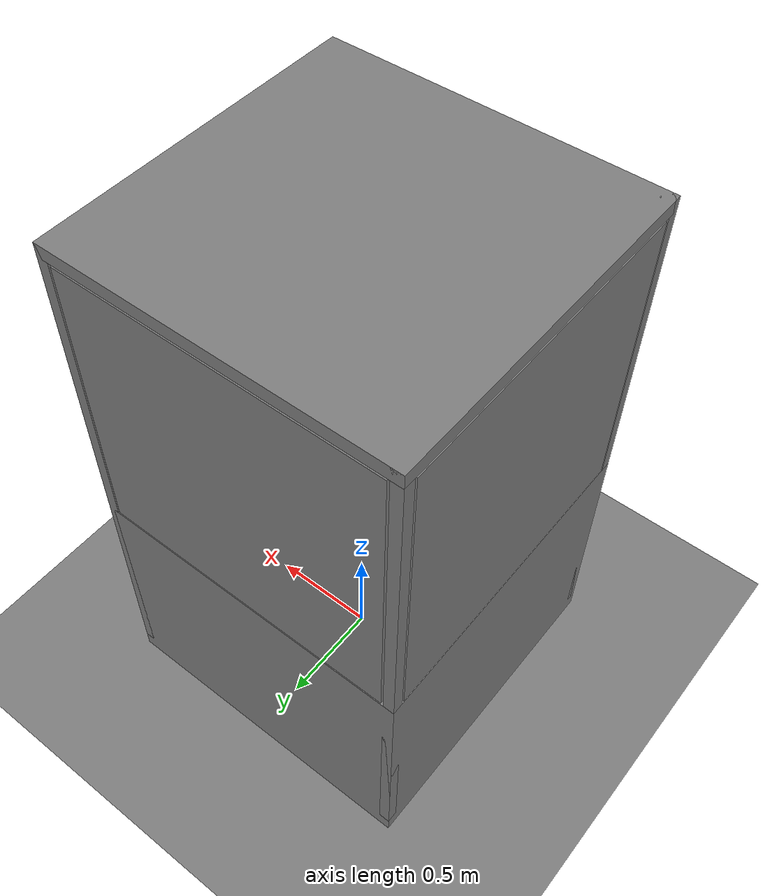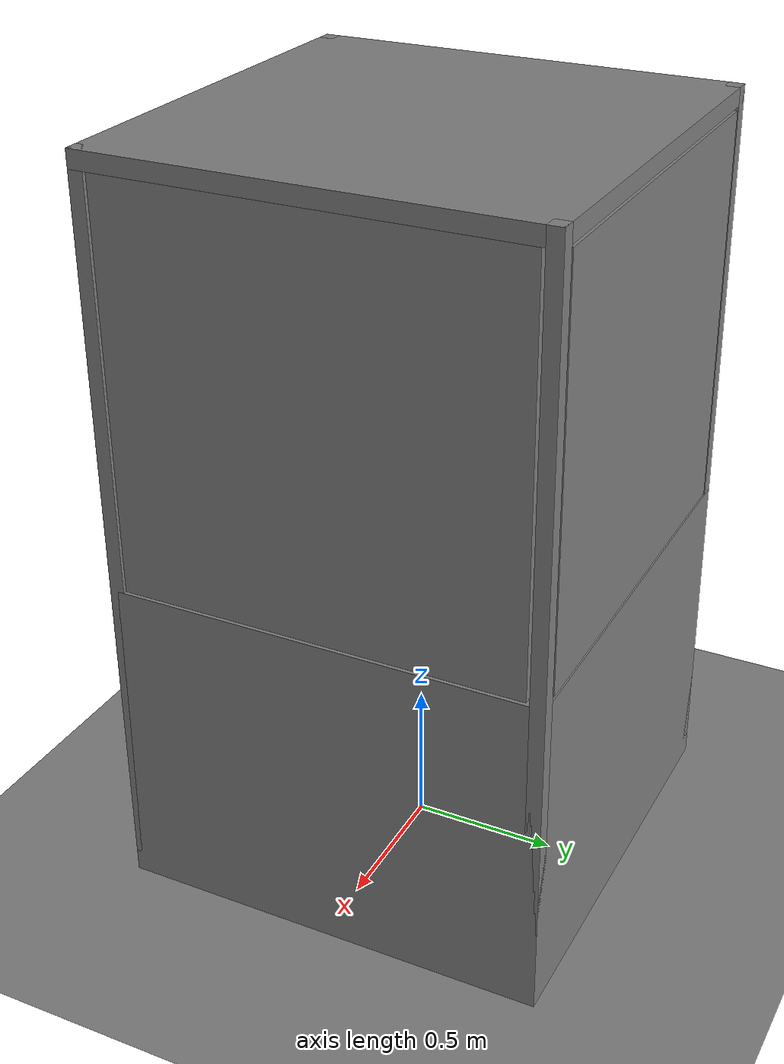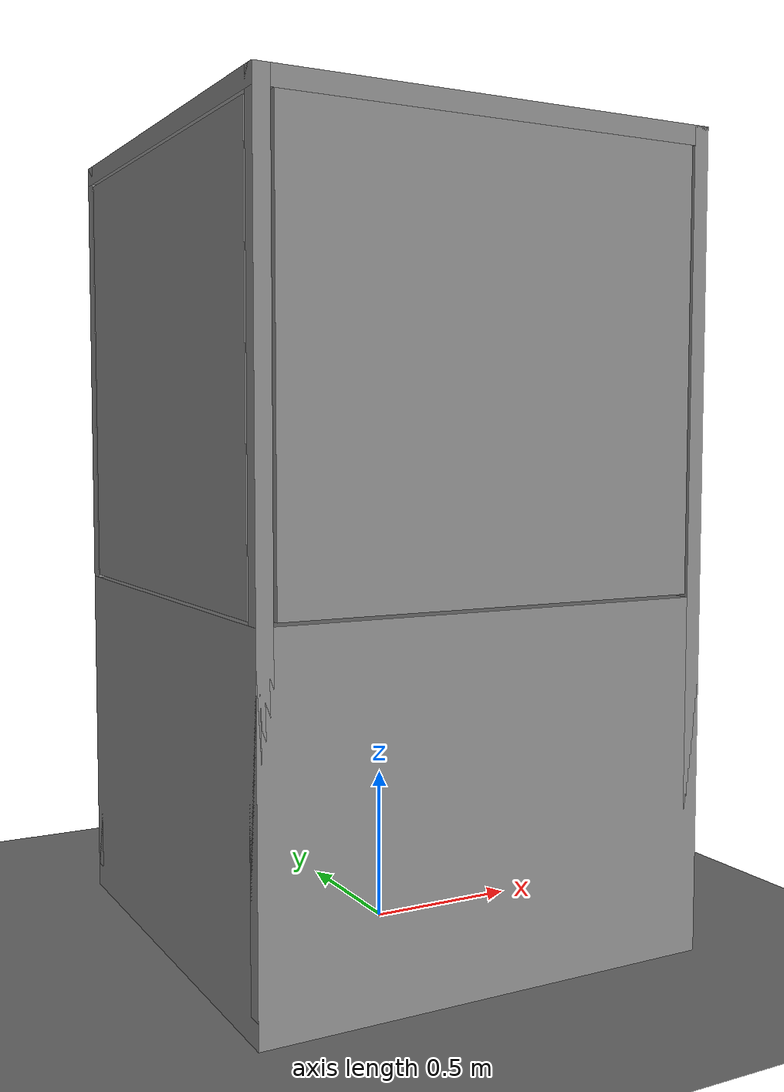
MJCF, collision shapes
<mujoco model="aic_world">
  <compiler angle="radian" />

  <option gravity="0 0 -9.8" magnetic="5.5645e-06 2.28758e-05 -4.23884e-05" />

  <visual>
    <headlight ambient="0 0 0" diffuse="0 0 0" specular="0 0 0" />
  </visual>

  <default>
    <default class="world_default" />
    <default class="cable_default">
      <joint damping="0.2" />
    </default>
    <default class="sc_port_default">
      <geom friction="0.5 0.5" />
    </default>
    <default class="nic_card_default">
      <geom friction="0.1 0.005 0.1" />
    </default>
  </default>

  <asset>
    <texture type="2d" colorspace="linear" name="texture_004c99bdba6ed245cd977ad2f24fce7b24967b1013515a98fda1c10cb547bb0b_floor_visual_Plane" file="004c99bdba6ed245cd977ad2f24fce7b24967b1013515a98fda1c10cb547bb0b_floor_visual_b3a94635-54d6beff6424435d3828cb4c8a1278d9ea3964b0.png" />
    <texture type="2d" colorspace="linear" name="texture_20c3c21d33ad91c02acd28d29c6619e4def43e4ad97f9963f1f40c69556a8667_nic_card_visual_merged_0" file="20c3c21d33ad91c02acd28d29c6619e4def43e4ad97f9963f1f40c69556a8667_nic_card_visual_45ced356-decb3c11fd49e8be2155fa2b1c64d354b4b1809a.png" />
    <texture type="2d" colorspace="linear" name="texture_20c3c21d33ad91c02acd28d29c6619e4def43e4ad97f9963f1f40c69556a8667_nic_card_visual_merged_1" file="20c3c21d33ad91c02acd28d29c6619e4def43e4ad97f9963f1f40c69556a8667_nic_card_visual_39dce63a-b1ab28e3f7e42255c5bb13a337e50008ebdbcb02.png" />
    <texture type="2d" colorspace="linear" name="texture_70f18413e443c6ac8bc02b557eb6c2925e90c411d72d13ae42f85ac7d3aa0981_sc_plug_visual_merged_0" file="70f18413e443c6ac8bc02b557eb6c2925e90c411d72d13ae42f85ac7d3aa0981_sc_plug_visual_5875f865-48f62b2f4840d852c7f39a01e6c183037dc1485b.png" />
    <texture type="2d" colorspace="linear" name="texture_6d489da5295e168562f19bbb4c2b9fbdac898c9ba5e02eb997d4ee70d7291580_lc_plug_visual_merged_0" file="6d489da5295e168562f19bbb4c2b9fbdac898c9ba5e02eb997d4ee70d7291580_lc_plug_visual_03dabf32-0905e8a8aa368516e682f6ec84258100cdb4efef.png" />
    <texture type="2d" colorspace="linear" name="texture_2564bbe0f5722ff8251bd203ef80c312faa7946fac1e29b125ba85a355c0acc4_sfp_module_visual_Body.005" file="2564bbe0f5722ff8251bd203ef80c312faa7946fac1e29b125ba85a355c0acc4_sfp_module_visual_8fc63b58-7471eafc55dcb668ae68adfe70a147b363ba3be9.png" />
    <texture type="2d" colorspace="linear" name="texture_2564bbe0f5722ff8251bd203ef80c312faa7946fac1e29b125ba85a355c0acc4_sfp_module_visual_Body.005_1" file="2564bbe0f5722ff8251bd203ef80c312faa7946fac1e29b125ba85a355c0acc4_sfp_module_visual_1f09e86a-a4dc4a72bd6e778067310898a5c179607fd78966.png" />
    <material name="material_2d9391f98201003f225acde4d09d36aa89e5d4dc4e11c4b1d33184f277d08bb1_enclosure_visual_V1014952.001" class="world_default" shininess="30" rgba="0.290196 0.290196 0.290196 1" />
    <material name="material_2d9391f98201003f225acde4d09d36aa89e5d4dc4e11c4b1d33184f277d08bb1_enclosure_visual_V1014952.001_1" class="world_default" shininess="30" rgba="0.129412 0.129412 0.133333 1" />
    <material name="material_2d9391f98201003f225acde4d09d36aa89e5d4dc4e11c4b1d33184f277d08bb1_light_visual_Plane.001" class="world_default" shininess="30" rgba="0.5 0.5 0.5 1" />
    <material name="material_004c99bdba6ed245cd977ad2f24fce7b24967b1013515a98fda1c10cb547bb0b_floor_visual_Plane" class="world_default" texture="texture_004c99bdba6ed245cd977ad2f24fce7b24967b1013515a98fda1c10cb547bb0b_floor_visual_Plane" shininess="30" rgba="0.5 0.5 0.5 1" />
    <material name="material_004c99bdba6ed245cd977ad2f24fce7b24967b1013515a98fda1c10cb547bb0b_walls_visual_Curve.001" class="world_default" shininess="30" rgba="0.0196078 0.0196078 0.0196078 1" />
    <material name="material_004c99bdba6ed245cd977ad2f24fce7b24967b1013515a98fda1c10cb547bb0b_walls_visual_merged_1" class="world_default" shininess="30" rgba="0.262745 0.262745 0.262745 1" />
    <material name="material_004c99bdba6ed245cd977ad2f24fce7b24967b1013515a98fda1c10cb547bb0b_walls_visual_Plane.003_1" class="world_default" shininess="30" rgba="0.8 0.8 0.8 1" />
    <material name="material_004c99bdba6ed245cd977ad2f24fce7b24967b1013515a98fda1c10cb547bb0b_walls_visual_Plane.002" class="world_default" shininess="30" rgba="0.207843 0.207843 0.207843 1" />
    <material name="material_fe59c208e1c9f790f73d46922512168041cc2a8447a159d98596e558a7dea8a9_base_visual_ISO_4762_-_M3_x_8.019" class="world_default" shininess="30" rgba="0.0352941 0.0352941 0.0313726 1" />
    <material name="material_fe59c208e1c9f790f73d46922512168041cc2a8447a159d98596e558a7dea8a9_base_visual_ISO_4762_-_M3_x_8.019_1" class="world_default" shininess="30" rgba="0.0313726 0.0313726 0.0313726 1" />
    <material name="material_fe59c208e1c9f790f73d46922512168041cc2a8447a159d98596e558a7dea8a9_base_visual_ISO_4762_-_M3_x_8.019_2" class="world_default" shininess="30" rgba="0.215686 0 0.215686 1" />
    <material name="material_20c3c21d33ad91c02acd28d29c6619e4def43e4ad97f9963f1f40c69556a8667_nic_card_mount_visual_ISO_4762_-_M2_x_8.054" class="world_default" shininess="30" rgba="0.0352941 0.0352941 0.0313726 1" />
    <material name="material_20c3c21d33ad91c02acd28d29c6619e4def43e4ad97f9963f1f40c69556a8667_nic_card_mount_visual_ISO_4762_-_M2_x_8.054_1" class="world_default" shininess="30" rgba="0.0313726 0.0313726 0.0313726 1" />
    <material name="material_20c3c21d33ad91c02acd28d29c6619e4def43e4ad97f9963f1f40c69556a8667_nic_card_visual_merged_0" class="world_default" texture="texture_20c3c21d33ad91c02acd28d29c6619e4def43e4ad97f9963f1f40c69556a8667_nic_card_visual_merged_0" shininess="30" rgba="0.5 0.5 0.5 1" />
    <material name="material_20c3c21d33ad91c02acd28d29c6619e4def43e4ad97f9963f1f40c69556a8667_nic_card_visual_merged_1" class="world_default" texture="texture_20c3c21d33ad91c02acd28d29c6619e4def43e4ad97f9963f1f40c69556a8667_nic_card_visual_merged_1" shininess="30" rgba="0.5 0.5 0.5 1" />
    <material name="material_20c3c21d33ad91c02acd28d29c6619e4def43e4ad97f9963f1f40c69556a8667_nic_card_visual_Plane.029" class="world_default" shininess="30" rgba="0.0235294 0.0392157 0.0117647 1" />
    <material name="material_20c3c21d33ad91c02acd28d29c6619e4def43e4ad97f9963f1f40c69556a8667_nic_card_visual_Cube.007" class="world_default" shininess="30" rgba="0 0 0 1" />
    <material name="material_70f18413e443c6ac8bc02b557eb6c2925e90c411d72d13ae42f85ac7d3aa0981_sc_plug_visual_merged_0" class="world_default" texture="texture_70f18413e443c6ac8bc02b557eb6c2925e90c411d72d13ae42f85ac7d3aa0981_sc_plug_visual_merged_0" shininess="30" rgba="0.5 0.5 0.5 1" />
    <material name="material_6d489da5295e168562f19bbb4c2b9fbdac898c9ba5e02eb997d4ee70d7291580_lc_plug_visual_merged_0" class="world_default" texture="texture_6d489da5295e168562f19bbb4c2b9fbdac898c9ba5e02eb997d4ee70d7291580_lc_plug_visual_merged_0" shininess="30" rgba="0.5 0.5 0.5 1" />
    <material name="material_2564bbe0f5722ff8251bd203ef80c312faa7946fac1e29b125ba85a355c0acc4_sfp_module_visual_Body.005" class="world_default" texture="texture_2564bbe0f5722ff8251bd203ef80c312faa7946fac1e29b125ba85a355c0acc4_sfp_module_visual_Body.005" shininess="30" rgba="0.5 0.5 0.5 1" />
    <material name="material_2564bbe0f5722ff8251bd203ef80c312faa7946fac1e29b125ba85a355c0acc4_sfp_module_visual_Body.005_1" class="world_default" texture="texture_2564bbe0f5722ff8251bd203ef80c312faa7946fac1e29b125ba85a355c0acc4_sfp_module_visual_Body.005_1" shininess="30" rgba="0.5 0.5 0.5 1" />
    <mesh name="2d9391f98201003f225acde4d09d36aa89e5d4dc4e11c4b1d33184f277d08bb1_enclosure_visual_V1014952.001" class="world_default" content_type="model/obj" file="2d9391f98201003f225acde4d09d36aa89e5d4dc4e11c4b1d33184f277d08bb1_enclosure_visual_V1014952.001-c990efe7b9dfe87aa065fd6eb3960ce051ae2aef.obj" inertia="shell" />
    <mesh name="2d9391f98201003f225acde4d09d36aa89e5d4dc4e11c4b1d33184f277d08bb1_enclosure_visual_V1014952.001_1" class="world_default" content_type="model/obj" file="2d9391f98201003f225acde4d09d36aa89e5d4dc4e11c4b1d33184f277d08bb1_enclosure_visual_V1014952.001_1-807e07de06af157c84b994a232617507a7059420.obj" inertia="shell" />
    <mesh name="2d9391f98201003f225acde4d09d36aa89e5d4dc4e11c4b1d33184f277d08bb1_light_visual_Plane.001" class="world_default" content_type="model/obj" file="2d9391f98201003f225acde4d09d36aa89e5d4dc4e11c4b1d33184f277d08bb1_light_visual_Plane.001-a8a774a80bc239d73769a498eae528b206eebcb0.obj" inertia="shell" />
    <mesh name="004c99bdba6ed245cd977ad2f24fce7b24967b1013515a98fda1c10cb547bb0b_floor_visual_Plane" class="world_default" content_type="model/obj" file="004c99bdba6ed245cd977ad2f24fce7b24967b1013515a98fda1c10cb547bb0b_floor_visual_Plane-4dc7f6150ad7c239769a0860a01efb2015657aea.obj" inertia="shell" />
    <mesh name="004c99bdba6ed245cd977ad2f24fce7b24967b1013515a98fda1c10cb547bb0b_walls_visual_Curve.001" class="world_default" content_type="model/obj" file="004c99bdba6ed245cd977ad2f24fce7b24967b1013515a98fda1c10cb547bb0b_walls_visual_Curve.001-4d7c79ac2e958832fdb15589262141ca1b80d3a5.obj" inertia="shell" />
    <mesh name="004c99bdba6ed245cd977ad2f24fce7b24967b1013515a98fda1c10cb547bb0b_walls_visual_merged_1" class="world_default" content_type="model/obj" file="004c99bdba6ed245cd977ad2f24fce7b24967b1013515a98fda1c10cb547bb0b_walls_visual_merged_1-359a22140d528747936e80bedf90e1437a177a9f.obj" inertia="shell" />
    <mesh name="004c99bdba6ed245cd977ad2f24fce7b24967b1013515a98fda1c10cb547bb0b_walls_visual_Plane.003_1" class="world_default" content_type="model/obj" file="004c99bdba6ed245cd977ad2f24fce7b24967b1013515a98fda1c10cb547bb0b_walls_visual_Plane.003_1-cd05ed21fa19a2784fb772d7519abf7c31c8b85f.obj" inertia="shell" />
    <mesh name="004c99bdba6ed245cd977ad2f24fce7b24967b1013515a98fda1c10cb547bb0b_walls_visual_Plane.002" class="world_default" content_type="model/obj" file="004c99bdba6ed245cd977ad2f24fce7b24967b1013515a98fda1c10cb547bb0b_walls_visual_Plane.002-ee4f781765eec46c2256d941981732d4b1857f24.obj" inertia="shell" />
    <mesh name="fe59c208e1c9f790f73d46922512168041cc2a8447a159d98596e558a7dea8a9_base_visual_ISO_4762_-_M3_x_8.019" class="world_default" content_type="model/obj" file="fe59c208e1c9f790f73d46922512168041cc2a8447a159d98596e558a7dea8a9_base_visual_ISO_4762_-_M3_x_8.019-f814bb518c42769543ab6246809f3fe4af5c2b64.obj" inertia="shell" />
    <mesh name="fe59c208e1c9f790f73d46922512168041cc2a8447a159d98596e558a7dea8a9_base_visual_ISO_4762_-_M3_x_8.019_1" class="world_default" content_type="model/obj" file="fe59c208e1c9f790f73d46922512168041cc2a8447a159d98596e558a7dea8a9_base_visual_ISO_4762_-_M3_x_8.019_1-0b276ba9910a7642121235b62d2afc47c3995782.obj" inertia="shell" />
    <mesh name="fe59c208e1c9f790f73d46922512168041cc2a8447a159d98596e558a7dea8a9_base_visual_ISO_4762_-_M3_x_8.019_2" class="world_default" content_type="model/obj" file="fe59c208e1c9f790f73d46922512168041cc2a8447a159d98596e558a7dea8a9_base_visual_ISO_4762_-_M3_x_8.019_2-7b96569be9572803417c5650ee83c9c883b44191.obj" inertia="shell" />
    <mesh name="20c3c21d33ad91c02acd28d29c6619e4def43e4ad97f9963f1f40c69556a8667_nic_card_mount_visual_ISO_4762_-_M2_x_8.054" class="world_default" content_type="model/obj" file="20c3c21d33ad91c02acd28d29c6619e4def43e4ad97f9963f1f40c69556a8667_nic_card_mount_visual_ISO_4762_-_M2_x_8.054-865f98896565b646973302f5cc3bb20e1474682a.obj" inertia="shell" />
    <mesh name="20c3c21d33ad91c02acd28d29c6619e4def43e4ad97f9963f1f40c69556a8667_nic_card_mount_visual_ISO_4762_-_M2_x_8.054_1" class="world_default" content_type="model/obj" file="20c3c21d33ad91c02acd28d29c6619e4def43e4ad97f9963f1f40c69556a8667_nic_card_mount_visual_ISO_4762_-_M2_x_8.054_1-5adcf23490bd5794ededbd17ac1064f40ca2f1d8.obj" inertia="shell" />
    <mesh name="20c3c21d33ad91c02acd28d29c6619e4def43e4ad97f9963f1f40c69556a8667_nic_card_visual_merged_0" class="world_default" content_type="model/obj" file="20c3c21d33ad91c02acd28d29c6619e4def43e4ad97f9963f1f40c69556a8667_nic_card_visual_merged_0-b45f6200bfaa68e87732b114c99af8b477e66413.obj" inertia="shell" />
    <mesh name="20c3c21d33ad91c02acd28d29c6619e4def43e4ad97f9963f1f40c69556a8667_nic_card_visual_merged_1" class="world_default" content_type="model/obj" file="20c3c21d33ad91c02acd28d29c6619e4def43e4ad97f9963f1f40c69556a8667_nic_card_visual_merged_1-0e349b7b61b9f4e172feb5320f1e8146f966f938.obj" inertia="shell" />
    <mesh name="20c3c21d33ad91c02acd28d29c6619e4def43e4ad97f9963f1f40c69556a8667_nic_card_visual_Plane.029" class="world_default" content_type="model/obj" file="20c3c21d33ad91c02acd28d29c6619e4def43e4ad97f9963f1f40c69556a8667_nic_card_visual_Plane.029-3e628f059a97b4e803370a2b5e0abfcfac063972.obj" inertia="shell" />
    <mesh name="20c3c21d33ad91c02acd28d29c6619e4def43e4ad97f9963f1f40c69556a8667_nic_card_visual_Cube.007" class="world_default" content_type="model/obj" file="20c3c21d33ad91c02acd28d29c6619e4def43e4ad97f9963f1f40c69556a8667_nic_card_visual_Cube.007-f8fbe4a2582482ceb99cb3e87bdf6d5a3daf05ec.obj" inertia="shell" />
    <mesh name="70f18413e443c6ac8bc02b557eb6c2925e90c411d72d13ae42f85ac7d3aa0981_sc_plug_visual_merged_0" class="world_default" content_type="model/obj" file="70f18413e443c6ac8bc02b557eb6c2925e90c411d72d13ae42f85ac7d3aa0981_sc_plug_visual_merged_0-67f94accf247f722dd4954d7448d7956402901f2.obj" inertia="shell" />
    <mesh name="6d489da5295e168562f19bbb4c2b9fbdac898c9ba5e02eb997d4ee70d7291580_lc_plug_visual_merged_0" class="world_default" content_type="model/obj" file="6d489da5295e168562f19bbb4c2b9fbdac898c9ba5e02eb997d4ee70d7291580_lc_plug_visual_merged_0-fdaf59710fc3cc118a7df05add4ff4205edda4ef.obj" inertia="shell" />
    <mesh name="2564bbe0f5722ff8251bd203ef80c312faa7946fac1e29b125ba85a355c0acc4_sfp_module_visual_Body.005" class="world_default" content_type="model/obj" file="2564bbe0f5722ff8251bd203ef80c312faa7946fac1e29b125ba85a355c0acc4_sfp_module_visual_Body.005-f93147e1e403de321fb70c06a4b1e00f20feb9fd.obj" inertia="shell" />
    <mesh name="2564bbe0f5722ff8251bd203ef80c312faa7946fac1e29b125ba85a355c0acc4_sfp_module_visual_Body.005_1" class="world_default" content_type="model/obj" file="2564bbe0f5722ff8251bd203ef80c312faa7946fac1e29b125ba85a355c0acc4_sfp_module_visual_Body.005_1-4af964a95522e2593eb6381eca4f09ef239782c7.obj" inertia="shell" />
  </asset>

  <worldbody>
    <body name="enclosure_link">
      <inertial pos="0 0 0" mass="1" diaginertia="1 1 1" />
      <geom name="v1015026001_collider_box" class="world_default" size="0.75 0.569492 0.75" pos="-0.010998 0.009283 0.569706" quat="1.22475e-07 -1.22474e-07 0.707107 0.707107" type="box" group="3" />
      <geom name="v1015028001_collider_box" class="world_default" size="0.0254 0.0254 1.25" pos="0.713602 0.733883 1.3292" quat="1.73205e-07 0 0 -1" type="box" group="3" />
      <geom name="v1015013001_collider_box" class="world_default" size="0.0304 0.75 0.75" pos="-0.010998 0.009283 2.5488" quat="0.707107 0 -0.707107 0" type="box" group="3" />
      <geom name="v1015027_collider_box" class="world_default" size="0.0254 0.0254 1.25" pos="-0.735598 0.733883 1.3292" quat="1.73205e-07 0 0 -1" type="box" group="3" />
      <geom name="v1015029_collider_box" class="world_default" size="0.0254 0.0254 1.25" pos="-0.735598 -0.715317 1.3292" quat="0 1.73205e-07 -1 -1.73205e-07" type="box" group="3" />
      <geom name="v1015030_collider_box" class="world_default" size="0.0254 0.0254 1.25" pos="0.713602 -0.715317 1.3292" quat="1.73205e-07 0 0 -1" type="box" group="3" />
      <geom name="enclosure_visual" class="world_default" type="mesh" contype="0" conaffinity="0" material="material_2d9391f98201003f225acde4d09d36aa89e5d4dc4e11c4b1d33184f277d08bb1_enclosure_visual_V1014952.001" mesh="2d9391f98201003f225acde4d09d36aa89e5d4dc4e11c4b1d33184f277d08bb1_enclosure_visual_V1014952.001" />
      <geom name="enclosure_visual_0" class="world_default" type="mesh" contype="0" conaffinity="0" material="material_2d9391f98201003f225acde4d09d36aa89e5d4dc4e11c4b1d33184f277d08bb1_enclosure_visual_V1014952.001_1" mesh="2d9391f98201003f225acde4d09d36aa89e5d4dc4e11c4b1d33184f277d08bb1_enclosure_visual_V1014952.001_1" />
      <geom name="light_visual" class="world_default" type="mesh" contype="0" conaffinity="0" material="material_2d9391f98201003f225acde4d09d36aa89e5d4dc4e11c4b1d33184f277d08bb1_light_visual_Plane.001" mesh="2d9391f98201003f225acde4d09d36aa89e5d4dc4e11c4b1d33184f277d08bb1_light_visual_Plane.001" />
    </body>
    <body name="enclosure_walls_link">
      <inertial pos="0 0 0" mass="1" diaginertia="1 1 1" />
      <geom name="v1015062006_collider_box" class="world_default" size="0.0250005 0.6796 0.6892" pos="-0.010998 0.734284 1.8288" quat="0.5 0.5 -0.5 -0.5" type="box" group="3" />
      <geom name="v1015062005_collider_box" class="world_default" size="0.6892 0.6796 0.025" pos="-0.735998 0.009283 1.8288" quat="0.5 0.5 -0.5 -0.5" type="box" group="3" />
      <geom name="v1015062007_collider_box" class="world_default" size="0.025 0.6846 0.6892" pos="-0.010998 -0.715717 1.8338" quat="0.5 0.5 -0.5 -0.5" type="box" group="3" />
      <geom name="v1015062008_collider_box" class="world_default" size="0.6892 0.6846 0.025" pos="0.714002 0.009283 1.8338" quat="0.5 0.5 -0.5 -0.5" type="box" group="3" />
    </body>
    <body name="floor_link">
      <inertial pos="0 0 0" mass="1" diaginertia="1 1 1" />
      <geom name="floor_cylinder" class="world_default" size="5 5 1" type="plane" group="3" />
      <geom name="floor_visual" class="world_default" type="mesh" contype="0" conaffinity="0" material="material_004c99bdba6ed245cd977ad2f24fce7b24967b1013515a98fda1c10cb547bb0b_floor_visual_Plane" mesh="004c99bdba6ed245cd977ad2f24fce7b24967b1013515a98fda1c10cb547bb0b_floor_visual_Plane" />
      <geom name="walls_visual" class="world_default" type="mesh" contype="0" conaffinity="0" material="material_004c99bdba6ed245cd977ad2f24fce7b24967b1013515a98fda1c10cb547bb0b_walls_visual_Curve.001" mesh="004c99bdba6ed245cd977ad2f24fce7b24967b1013515a98fda1c10cb547bb0b_walls_visual_Curve.001" />
      <geom name="walls_visual_0" class="world_default" type="mesh" contype="0" conaffinity="0" material="material_004c99bdba6ed245cd977ad2f24fce7b24967b1013515a98fda1c10cb547bb0b_walls_visual_merged_1" mesh="004c99bdba6ed245cd977ad2f24fce7b24967b1013515a98fda1c10cb547bb0b_walls_visual_merged_1" />
      <geom name="walls_visual_1" class="world_default" type="mesh" contype="0" conaffinity="0" material="material_004c99bdba6ed245cd977ad2f24fce7b24967b1013515a98fda1c10cb547bb0b_walls_visual_Plane.003_1" mesh="004c99bdba6ed245cd977ad2f24fce7b24967b1013515a98fda1c10cb547bb0b_walls_visual_Plane.003_1" />
      <geom name="walls_visual_2" class="world_default" type="mesh" contype="0" conaffinity="0" material="material_004c99bdba6ed245cd977ad2f24fce7b24967b1013515a98fda1c10cb547bb0b_walls_visual_Plane.002" mesh="004c99bdba6ed245cd977ad2f24fce7b24967b1013515a98fda1c10cb547bb0b_walls_visual_Plane.002" />
    </body>
    <body name="task_board_base_link" pos="0.15 -0.2 1.14" quat="4.63268e-05 0 0 1">
      <inertial pos="0 0 0" mass="5" diaginertia="0.1 0.1 0.1" />
      <geom name="task_board_base_link_fixed_joint_lump__v1015083001_collider_box_left_collision" class="world_default" size="0.15 0.114 0.0045" pos="0 -0.1 0.0075" type="box" group="3" />
      <geom name="task_board_base_link_fixed_joint_lump__v1015083001_collider_right_collision_1" class="world_default" size="0.15 0.0635 0.0045" pos="0 0.149 0.0075" type="box" group="3" />
      <geom name="task_board_base_link_fixed_joint_lump__v1015083001_collider_mid_collision_2" class="world_default" size="0.07 0.006 0.0045" pos="-0.075 0.05 0.0075" type="box" group="3" />
      <geom name="task_board_base_link_fixed_joint_lump__v1015083001_collider_bottom_collision_3" class="world_default" size="0.0825 0.2125 0.0045" pos="0.068 0 0.0075" type="box" group="3" />
      <geom name="task_board_base_link_fixed_joint_lump__v1015083001_collider_top_collision_4" class="world_default" size="0.0075 0.2125 0.0045" pos="-0.143 0 0.0075" type="box" group="3" />
      <geom name="task_board_base_link_fixed_joint_lump__base_visual_visual" class="world_default" type="mesh" contype="0" conaffinity="0" material="material_fe59c208e1c9f790f73d46922512168041cc2a8447a159d98596e558a7dea8a9_base_visual_ISO_4762_-_M3_x_8.019" mesh="fe59c208e1c9f790f73d46922512168041cc2a8447a159d98596e558a7dea8a9_base_visual_ISO_4762_-_M3_x_8.019" />
      <geom name="task_board_base_link_fixed_joint_lump__base_visual_visual_0" class="world_default" type="mesh" contype="0" conaffinity="0" material="material_fe59c208e1c9f790f73d46922512168041cc2a8447a159d98596e558a7dea8a9_base_visual_ISO_4762_-_M3_x_8.019_1" mesh="fe59c208e1c9f790f73d46922512168041cc2a8447a159d98596e558a7dea8a9_base_visual_ISO_4762_-_M3_x_8.019_1" />
      <geom name="task_board_base_link_fixed_joint_lump__base_visual_visual_1" class="world_default" type="mesh" contype="0" conaffinity="0" material="material_fe59c208e1c9f790f73d46922512168041cc2a8447a159d98596e558a7dea8a9_base_visual_ISO_4762_-_M3_x_8.019_2" mesh="fe59c208e1c9f790f73d46922512168041cc2a8447a159d98596e558a7dea8a9_base_visual_ISO_4762_-_M3_x_8.019_2" />
      <body name="nic_card_mount_0::nic_card_mount_link" childclass="nic_card_default" pos="-0.081418 -0.1745 0.012">
        <inertial pos="0 0 0" mass="1" diaginertia="1 1 1" />
        <geom name="v1015085006_collider_box" class="world_default" size="0.0025035 0.036998 0.0775" pos="0.006002 -0.025497 0.0875" quat="0.707107 0 0 0.707107" type="box" group="3" />
        <geom name="v1015085006_collider_box.001" class="world_default" size="0.0125 0.01075 0.007" pos="-0.0555 -0.0155 0.172" quat="0.707107 0 0 0.707107" type="box" group="3" />
        <geom name="v1015085006_collider_box.002" class="world_default" size="0.01375 0.002532 0.0515" pos="0.038535 -0.01425 0.1155" quat="0.707107 0 0 0.707107" type="box" group="3" />
        <geom name="v1015085006_collider_box.003" class="world_default" size="0.010003 0.044894 0.0075" pos="-0.001997 -0.017997 0.0075" quat="0.707107 0 0 0.707107" type="box" group="3" />
        <geom name="v1015085006_collider_box004_collider_box" class="world_default" size="0.0025005 0.02575 0.0075" pos="-0.042132 -0.025499 0.151803" quat="0.653335 0.270468 0.270468 0.653335" type="box" group="3" />
        <geom name="v1015085006_collider_box.005" class="world_default" size="0.008 0.01 0.0075" pos="-0.043 -0.0198 0.1665" quat="0.65401 0.268834 0.268834 0.654009" type="box" group="3" />
        <geom name="v1015085011_collider_box" class="world_default" size="0.0078345 0.031 0.0025" pos="3e-06 -0.004871 0.0025" quat="0.707107 0 0 0.707107" type="box" group="3" />
        <geom name="nic_card_mount_visual" class="world_default" type="mesh" contype="0" conaffinity="0" material="material_20c3c21d33ad91c02acd28d29c6619e4def43e4ad97f9963f1f40c69556a8667_nic_card_mount_visual_ISO_4762_-_M2_x_8.054" mesh="20c3c21d33ad91c02acd28d29c6619e4def43e4ad97f9963f1f40c69556a8667_nic_card_mount_visual_ISO_4762_-_M2_x_8.054" />
        <geom name="nic_card_mount_visual_0" class="world_default" type="mesh" contype="0" conaffinity="0" material="material_20c3c21d33ad91c02acd28d29c6619e4def43e4ad97f9963f1f40c69556a8667_nic_card_mount_visual_ISO_4762_-_M2_x_8.054_1" mesh="20c3c21d33ad91c02acd28d29c6619e4def43e4ad97f9963f1f40c69556a8667_nic_card_mount_visual_ISO_4762_-_M2_x_8.054_1" />
        <body name="nic_card_link" pos="-0.002 -0.01785 0.0899" quat="0.707388 -0.706825 0 0">
          <inertial pos="0.00150732 -0.00850988 0.00340281" quat="0.506895 0.50066 -0.499024 0.493328" mass="0.15" diaginertia="0.000228137 0.000185186 4.94971e-05" />
          <geom name="pcb_collider_box" class="world_default" size="0.028 0.0725 0.0008" pos="0 0 -0.0008" type="box" group="3" />
          <geom name="pcb_collider_box.001" class="world_default" size="0.0345 0.0255 0.0008" pos="0.0065 -0.0025 -0.0008" type="box" group="3" />
          <geom name="pcb_collider_box.002" class="world_default" size="0.032 0.04775 0.0008" pos="0.004 -0.02475 -0.0008" type="box" group="3" />
          <geom name="cylinder015_collider_cylinder" class="world_default" size="0.00268 0.002757" pos="0.03175 -0.063 -0.000988" type="cylinder" group="3" />
          <geom name="cylinder017_collider_cylinder" class="world_default" size="0.00268 0.002759" pos="-0.02225 -0.0675 -0.000986" type="cylinder" group="3" />
          <geom name="pcb001_collider_box" class="world_default" size="0.005125 0.005125 0.0023015" pos="0.015105 0.054161 0.001899" type="box" group="3" />
          <geom name="pcb024_collider_box" class="world_default" size="0.0034 0.0034 0.002162" pos="-0.015586 0.055516 0.001759" type="box" group="3" />
          <geom name="pcb033_collider_box" class="world_default" size="0.021537 0.0208075 0.0011515" pos="-0.002297 0.046302 0.000749" type="box" group="3" />
          <geom name="cube001_collider_box" class="world_default" size="0.002 0.07 0.00575" pos="0.025006 -0.00041 0.00575" type="box" group="3" />
          <geom name="cube001_collider_box.001" class="world_default" size="0.0235 0.026 0.0055" pos="-0.0029 -0.0015 0.008" type="box" group="3" />
          <geom name="10099100-011lfc001_collider_box" class="world_default" size="0.0005495 0.02436 0.0055415" pos="-0.018049 -0.052954 0.00548" quat="0.00675028 0.999977 0 0" type="box" group="3" />
          <geom name="10099100-011lfc001_collider_box.001" class="world_default" size="0.0005625 0.02436 0.0055605" pos="-0.002437 -0.052954 0.005461" quat="0.00675028 0.999977 0 0" type="box" group="3" />
          <geom name="10099100-011lfc001_collider_box.002" class="world_default" size="0.008112 0.02436 0.0004615" pos="-0.010237 -0.052889 0.010484" quat="0.00675028 0.999977 0 0" type="box" group="3" />
          <geom name="10099100-011lfc001_collider_box.003" class="world_default" size="0.008112 0.02436 0.000527" pos="-0.010237 -0.053024 4.6e-05" quat="0.00675028 0.999977 0 0" type="box" group="3" />
          <geom name="10099100-011lfc001_collider_box.004" class="world_default" size="0.008112 0.000125 0.006849" pos="-0.010237 -0.028738 0.003845" quat="0.00675028 0.999977 0 0" type="box" group="3" />
          <geom name="10099100-011lfc001_collider_box.005" class="world_default" size="0.0005495 0.02436 0.0055415" pos="0.005151 -0.052954 0.00548" quat="0.00675028 0.999977 0 0" type="box" group="3" />
          <geom name="10099100-011lfc001_collider_box.006" class="world_default" size="0.0005625 0.02436 0.0055605" pos="0.020763 -0.052954 0.005461" quat="0.00675028 0.999977 0 0" type="box" group="3" />
          <geom name="10099100-011lfc001_collider_box.007" class="world_default" size="0.008112 0.02436 0.0004615" pos="0.012963 -0.052889 0.010484" quat="0.00675028 0.999977 0 0" type="box" group="3" />
          <geom name="10099100-011lfc001_collider_box.008" class="world_default" size="0.008112 0.02436 0.000527" pos="0.012963 -0.053024 4.6e-05" quat="0.00675028 0.999977 0 0" type="box" group="3" />
          <geom name="10099100-011lfc001_collider_box.009" class="world_default" size="0.008112 0.000125 0.006849" pos="0.012963 -0.028738 0.003845" quat="0.00675028 0.999977 0 0" type="box" group="3" />
          <geom name="plane001_collider_box" class="world_default" size="0.056701 0.0004375 0.0017245" pos="-0.007649 -0.074646 -0.000751" type="box" group="3" />
          <geom name="plane001_collider_box.001" class="world_default" size="0.056701 0.0004375 0.002505" pos="-0.007649 -0.074646 0.01352" type="box" group="3" />
          <geom name="plane001_collider_box.002" class="world_default" size="0.0180905 0.0004375 0.0055615" pos="0.038559 -0.074646 0.006455" type="box" group="3" />
          <geom name="plane001_collider_box.003" class="world_default" size="0.023089 0.0004375 0.0055615" pos="-0.041261 -0.074646 0.006455" type="box" group="3" />
          <geom name="plane001_collider_box.004" class="world_default" size="0.0004375 0.00635 0.0105" pos="-0.063913 -0.080558 0.005525" type="box" group="3" />
          <geom name="plane001_collider_box.005" class="world_default" size="0.032 0.007498 0.0012375" pos="0.004 -0.067206 -0.001238" type="box" group="3" />
          <geom name="cube001_collider_box.002" class="world_default" size="0.0215 0.024 0.0015745" pos="-0.0029 -0.0015 0.001228" type="box" group="3" />
          <geom name="plane001_collider_box.006" class="world_default" size="0.038092 0.001584 0.0004385" pos="-0.005942 -0.073499 0.015586" type="box" group="3" />
          <geom name="contact_collision_01" class="world_default" size="0.004056 0.000125 0.00125" pos="0.012963 -0.0305 0.002845" quat="0.00675028 0.999977 0 0" type="box" group="3" />
          <geom name="contact_collision_02" class="world_default" size="0.004056 0.000125 0.00125" pos="-0.010237 -0.0305 0.002845" quat="0.00675028 0.999977 0 0" type="box" group="3" />
          <geom name="contact_collision_01_holder" class="world_default" size="0.004056 0.000125 0.001" pos="0.012963 -0.03 0.008" quat="0.00675028 0.999977 0 0" type="box" group="3" />
          <geom name="contact_collision_02_holder" class="world_default" size="0.004056 0.000125 0.001" pos="-0.010237 -0.03 0.008" quat="0.00675028 0.999977 0 0" type="box" group="3" />
          <geom name="nic_card_visual" class="world_default" type="mesh" contype="0" conaffinity="0" material="material_20c3c21d33ad91c02acd28d29c6619e4def43e4ad97f9963f1f40c69556a8667_nic_card_visual_merged_0" mesh="20c3c21d33ad91c02acd28d29c6619e4def43e4ad97f9963f1f40c69556a8667_nic_card_visual_merged_0" />
          <geom name="nic_card_visual_0" class="world_default" type="mesh" contype="0" conaffinity="0" material="material_20c3c21d33ad91c02acd28d29c6619e4def43e4ad97f9963f1f40c69556a8667_nic_card_visual_merged_1" mesh="20c3c21d33ad91c02acd28d29c6619e4def43e4ad97f9963f1f40c69556a8667_nic_card_visual_merged_1" />
          <geom name="nic_card_visual_1" class="world_default" type="mesh" contype="0" conaffinity="0" material="material_20c3c21d33ad91c02acd28d29c6619e4def43e4ad97f9963f1f40c69556a8667_nic_card_visual_Plane.029" mesh="20c3c21d33ad91c02acd28d29c6619e4def43e4ad97f9963f1f40c69556a8667_nic_card_visual_Plane.029" />
          <geom name="nic_card_visual_2" class="world_default" type="mesh" contype="0" conaffinity="0" material="material_20c3c21d33ad91c02acd28d29c6619e4def43e4ad97f9963f1f40c69556a8667_nic_card_visual_Cube.007" mesh="20c3c21d33ad91c02acd28d29c6619e4def43e4ad97f9963f1f40c69556a8667_nic_card_visual_Cube.007" />
          <site name="sfp_port_sensor" class="world_default" pos="0 0 0" />
          <body name="sfp_port_0_link" pos="0.01295 -0.031572 0.00501" quat="0.702339 -0.711842 0 0">
            <inertial pos="0 0 0" mass="1" diaginertia="1 1 1" />
            <body name="sfp_port_0_link_entrance" pos="0 0 -0.0458">
              <inertial pos="0 0 0" mass="1" diaginertia="1 1 1" />
            </body>
          </body>
          <body name="sfp_port_1_link" pos="-0.01025 -0.031572 0.00501" quat="0.702339 -0.711842 0 0">
            <inertial pos="0 0 0" mass="1" diaginertia="1 1 1" />
            <body name="sfp_port_1_link_entrance" pos="0 0 -0.0458">
              <inertial pos="0 0 0" mass="1" diaginertia="1 1 1" />
            </body>
          </body>
        </body>
      </body>
    </body>
    <body name="static_link">
      <inertial pos="0 0 0" mass="1" diaginertia="1 1 1" />
    </body>
    <body name="static_link_0">
      <inertial pos="0 0 0" mass="1" diaginertia="1 1 1" />
    </body>
  </worldbody>

  <contact>
    <exclude name="task_board_base_link_nic_card_mount_0::nic_card_mount_link" body1="task_board_base_link" body2="nic_card_mount_0::nic_card_mount_link" />
    </contact>

  </mujoco>
